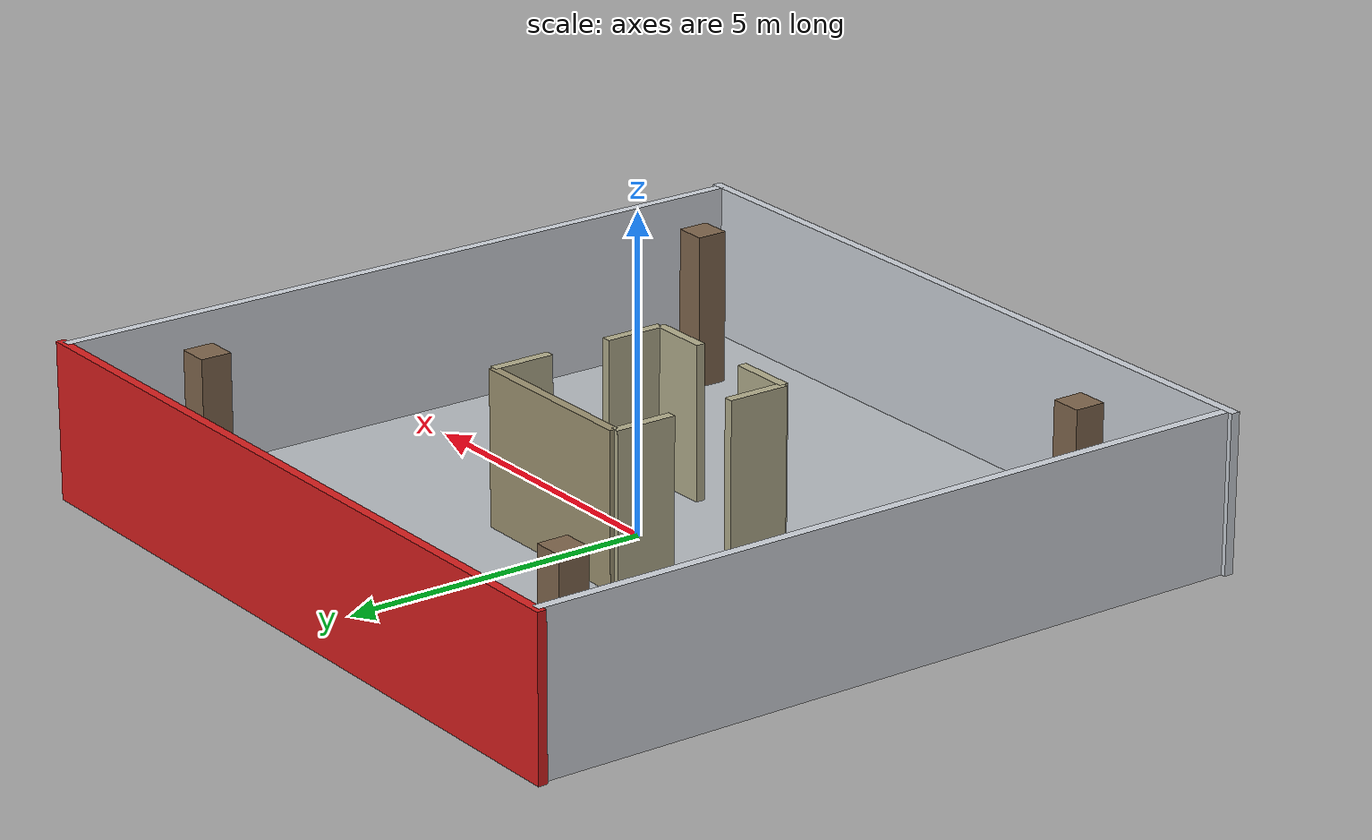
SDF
<sdf version="1.9">
 <world name="base_stand_12x12">
  <physics name="1ms" type="ignored">
   <max_step_size>0.001</max_step_size>
   <real_time_factor>1.0</real_time_factor>
  </physics>
  <plugin filename="gz-sim-physics-system" name="gz::sim::systems::Physics"/>
  <plugin filename="gz-sim-scene-broadcaster-system" name="gz::sim::systems::SceneBroadcaster"/>
  <plugin filename="gz-sim-user-commands-system" name="gz::sim::systems::UserCommands"/>
  <plugin filename="gz-sim-sensors-system" name="gz::sim::systems::Sensors">
   <render_engine>ogre2</render_engine>
  </plugin>
  <plugin filename="gz-sim-imu-system" name="gz::sim::systems::Imu"/>
  <plugin filename="gz-sim-navsat-system" name="gz::sim::systems::NavSat"/>
  <spherical_coordinates>
   <latitude_deg>-35.363262</latitude_deg>
   <longitude_deg>149.165237</longitude_deg>
   <elevation>584</elevation>
   <heading_deg>0</heading_deg>
   <surface_model>EARTH_WGS84</surface_model>
  </spherical_coordinates>
  <light type="directional" name="main_light">
   <cast_shadows>false</cast_shadows>
   <pose>0 0 10 0 0 0</pose>
   <diffuse>1.0 1.0 1.0 1</diffuse>
   <specular>0.5 0.5 0.5 1</specular>
   <direction>0.1 0.1 -1</direction>
  </light>
  <model name="floor">
   <static>true</static>
   <link name="link">
    <collision name="c"><geometry><box><size>12 12 0.05</size></box></geometry></collision>
    <visual name="v">
     <geometry><box><size>12 12 0.05</size></box></geometry>
     <material>
      <ambient>0.72 0.74 0.76 1</ambient>
      <diffuse>0.72 0.74 0.76 1</diffuse>
      <specular>0.1 0.1 0.1 1</specular>
     </material>
    </visual>
   </link>
  </model>
  <model name="wall_red">
   <static>true</static>
   <pose>0 6 1.25 0 0 0</pose>
   <link name="link">
    <collision name="c"><geometry><box><size>12.3 0.15 2.5</size></box></geometry></collision>
    <visual name="v">
     <geometry><box><size>12.3 0.15 2.5</size></box></geometry>
     <material><ambient>0.85 0.12 0.12 1</ambient><diffuse>0.85 0.12 0.12 1</diffuse></material>
    </visual>
   </link>
  </model>
  <model name="wall_opposite">
   <static>true</static>
   <pose>0 -6 1.25 0 0 0</pose>
   <link name="link">
    <collision name="c"><geometry><box><size>12.3 0.15 2.5</size></box></geometry></collision>
    <visual name="v">
     <geometry><box><size>12.3 0.15 2.5</size></box></geometry>
     <material><ambient>0.80 0.82 0.85 1</ambient><diffuse>0.80 0.82 0.85 1</diffuse></material>
    </visual>
   </link>
  </model>
  <model name="wall_side_xneg">
   <static>true</static>
   <pose>-6 0 1.25 0 0 0</pose>
   <link name="link">
    <collision name="c"><geometry><box><size>0.15 12.0 2.5</size></box></geometry></collision>
    <visual name="v">
     <geometry><box><size>0.15 12.0 2.5</size></box></geometry>
     <material><ambient>0.82 0.84 0.87 1</ambient><diffuse>0.82 0.84 0.87 1</diffuse></material>
    </visual>
   </link>
  </model>
  <model name="wall_side_xpos">
   <static>true</static>
   <pose>6 0 1.25 0 0 0</pose>
   <link name="link">
    <collision name="c"><geometry><box><size>0.15 12.0 2.5</size></box></geometry></collision>
    <visual name="v">
     <geometry><box><size>0.15 12.0 2.5</size></box></geometry>
     <material><ambient>0.82 0.84 0.87 1</ambient><diffuse>0.82 0.84 0.87 1</diffuse></material>
    </visual>
   </link>
  </model>
  <model name="column_xpos_ypos">
   <static>true</static>
   <pose>4.5 4.5 1.25 0 0 0</pose>
   <link name="link">
    <collision name="c"><geometry><box><size>0.5 0.5 2.5</size></box></geometry></collision>
    <visual name="v">
     <geometry><box><size>0.5 0.5 2.5</size></box></geometry>
     <material><ambient>0.5 0.4 0.3 1</ambient><diffuse>0.5 0.4 0.3 1</diffuse></material>
    </visual>
   </link>
  </model>
  <model name="column_xneg_ypos">
   <static>true</static>
   <pose>-4.5 4.5 1.25 0 0 0</pose>
   <link name="link">
    <collision name="c"><geometry><box><size>0.5 0.5 2.5</size></box></geometry></collision>
    <visual name="v">
     <geometry><box><size>0.5 0.5 2.5</size></box></geometry>
     <material><ambient>0.5 0.4 0.3 1</ambient><diffuse>0.5 0.4 0.3 1</diffuse></material>
    </visual>
   </link>
  </model>
  <model name="column_xpos_yneg">
   <static>true</static>
   <pose>4.5 -4.5 1.25 0 0 0</pose>
   <link name="link">
    <collision name="c"><geometry><box><size>0.5 0.5 2.5</size></box></geometry></collision>
    <visual name="v">
     <geometry><box><size>0.5 0.5 2.5</size></box></geometry>
     <material><ambient>0.5 0.4 0.3 1</ambient><diffuse>0.5 0.4 0.3 1</diffuse></material>
    </visual>
   </link>
  </model>
  <model name="column_xneg_yneg">
   <static>true</static>
   <pose>-4.5 -4.5 1.25 0 0 0</pose>
   <link name="link">
    <collision name="c"><geometry><box><size>0.5 0.5 2.5</size></box></geometry></collision>
    <visual name="v">
     <geometry><box><size>0.5 0.5 2.5</size></box></geometry>
     <material><ambient>0.5 0.4 0.3 1</ambient><diffuse>0.5 0.4 0.3 1</diffuse></material>
    </visual>
   </link>
  </model>
  <model name="inner_solid_yp">
   <static>true</static>
   <pose>0 1.5 1.25 0 0 0</pose>
   <link name="link">
    <collision name="c"><geometry><box><size>3.0 0.15 2.5</size></box></geometry></collision>
    <visual name="v">
     <geometry><box><size>3.0 0.15 2.5</size></box></geometry>
     <material><ambient>0.62 0.58 0.45 1</ambient><diffuse>0.62 0.58 0.45 1</diffuse></material>
    </visual>
   </link>
  </model>
  <model name="inner_door_yn_a">
   <static>true</static>
   <pose>1.0 -1.5 1.25 0 0 0</pose>
   <link name="link">
    <collision name="c"><geometry><box><size>1.0 0.15 2.5</size></box></geometry></collision>
    <visual name="v">
     <geometry><box><size>1.0 0.15 2.5</size></box></geometry>
     <material><ambient>0.70 0.68 0.55 1</ambient><diffuse>0.70 0.68 0.55 1</diffuse></material>
    </visual>
   </link>
  </model>
  <model name="inner_door_yn_b">
   <static>true</static>
   <pose>-1.0 -1.5 1.25 0 0 0</pose>
   <link name="link">
    <collision name="c"><geometry><box><size>1.0 0.15 2.5</size></box></geometry></collision>
    <visual name="v">
     <geometry><box><size>1.0 0.15 2.5</size></box></geometry>
     <material><ambient>0.70 0.68 0.55 1</ambient><diffuse>0.70 0.68 0.55 1</diffuse></material>
    </visual>
   </link>
  </model>
  <model name="inner_door_xp_a">
   <static>true</static>
   <pose>1.5 1.0 1.25 0 0 0</pose>
   <link name="link">
    <collision name="c"><geometry><box><size>0.15 1.0 2.5</size></box></geometry></collision>
    <visual name="v">
     <geometry><box><size>0.15 1.0 2.5</size></box></geometry>
     <material><ambient>0.70 0.68 0.55 1</ambient><diffuse>0.70 0.68 0.55 1</diffuse></material>
    </visual>
   </link>
  </model>
  <model name="inner_door_xp_b">
   <static>true</static>
   <pose>1.5 -1.0 1.25 0 0 0</pose>
   <link name="link">
    <collision name="c"><geometry><box><size>0.15 1.0 2.5</size></box></geometry></collision>
    <visual name="v">
     <geometry><box><size>0.15 1.0 2.5</size></box></geometry>
     <material><ambient>0.70 0.68 0.55 1</ambient><diffuse>0.70 0.68 0.55 1</diffuse></material>
    </visual>
   </link>
  </model>
  <model name="inner_door_xn_a">
   <static>true</static>
   <pose>-1.5 1.0 1.25 0 0 0</pose>
   <link name="link">
    <collision name="c"><geometry><box><size>0.15 1.0 2.5</size></box></geometry></collision>
    <visual name="v">
     <geometry><box><size>0.15 1.0 2.5</size></box></geometry>
     <material><ambient>0.70 0.68 0.55 1</ambient><diffuse>0.70 0.68 0.55 1</diffuse></material>
    </visual>
   </link>
  </model>
  <model name="inner_door_xn_b">
   <static>true</static>
   <pose>-1.5 -1.0 1.25 0 0 0</pose>
   <link name="link">
    <collision name="c"><geometry><box><size>0.15 1.0 2.5</size></box></geometry></collision>
    <visual name="v">
     <geometry><box><size>0.15 1.0 2.5</size></box></geometry>
     <material><ambient>0.70 0.68 0.55 1</ambient><diffuse>0.70 0.68 0.55 1</diffuse></material>
    </visual>
   </link>
  </model>
 </world>
</sdf>
